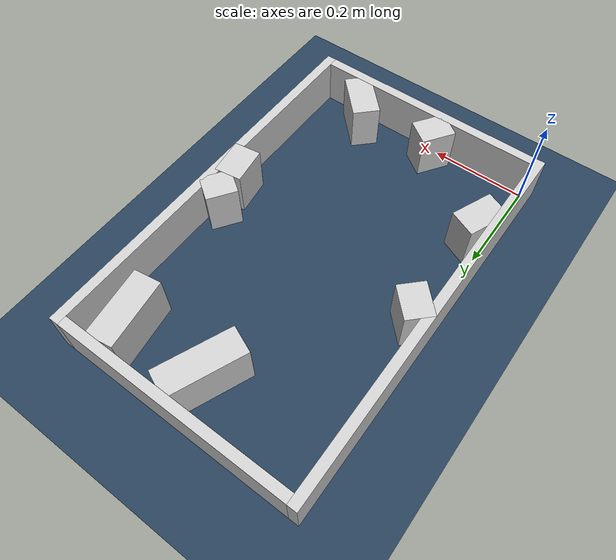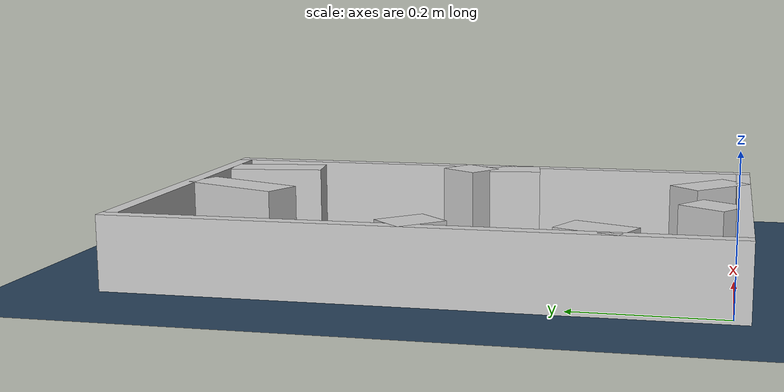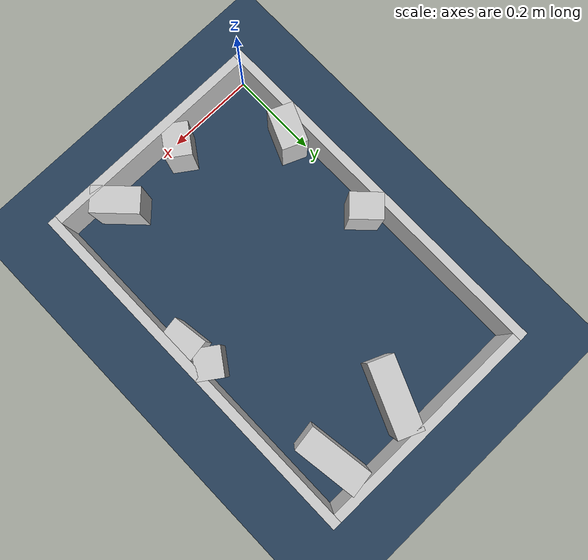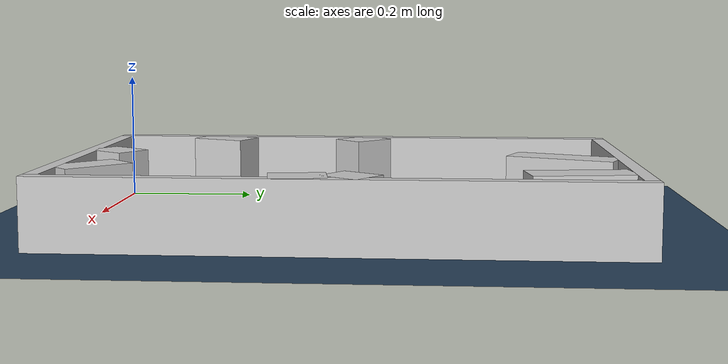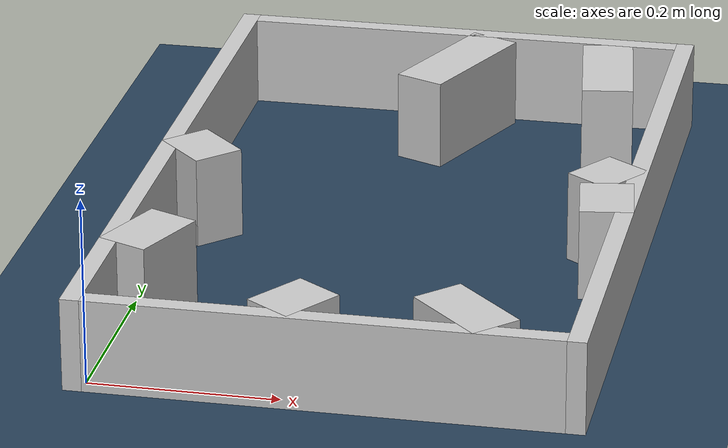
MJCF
<?xml version="1.0" ?>
<mujoco model="generated_real_template">
  <compiler angle="degree"/>
  <option timestep="0.002" integrator="implicitfast" iterations="100" cone="elliptic"/>
  <default>
    <geom density="1"/>
  </default>
  <asset>
    <texture builtin="gradient" height="3072" rgb1="0.3 0.5 0.7" rgb2="0 0 0" type="skybox" width="512"/>
    <texture builtin="checker" height="300" mark="edge" markrgb="0.8 0.8 0.8" name="groundplane" rgb1="0.2 0.3 0.4" rgb2="0.1 0.2 0.3" type="2d" width="300"/>
    <material name="groundplane" reflectance="0.2" texrepeat="5 5" texture="groundplane" texuniform="true"/>
  </asset>
  <worldbody>
    <light dir="0 0 -1" directional="true" pos="0 0 1.5"/>
    <geom name="floor" type="plane" condim="4" friction="0.5 0.005 0.001" material="groundplane" size="0 0 0.05"/>
    <body name="walls">
      <geom name="wall_boundary_left" type="box" condim="4" friction="1.0 0.005 0.0001" rgba="0.8 0.8 0.8 1" pos="-0.010000 0.387500 0.050000" euler="0 0 0.000000" size="0.010000 0.407500 0.050000"/>
      <geom name="wall_boundary_right" type="box" condim="4" friction="1.0 0.005 0.0001" rgba="0.8 0.8 0.8 1" pos="0.500000 0.387500 0.050000" euler="0 0 0.000000" size="0.010000 0.407500 0.050000"/>
      <geom name="wall_boundary_bottom" type="box" condim="4" friction="1.0 0.005 0.0001" rgba="0.8 0.8 0.8 1" pos="0.245000 -0.010000 0.050000" euler="0 0 0.000000" size="0.245000 0.010000 0.050000"/>
      <geom name="wall_boundary_top" type="box" condim="4" friction="1.0 0.005 0.0001" rgba="0.8 0.8 0.8 1" pos="0.245000 0.785000 0.050000" euler="0 0 0.000000" size="0.245000 0.010000 0.050000"/>
      <geom name="wall_inner_1_1" type="box" condim="4" friction="1.0 0.005 0.0001" rgba="0.8 0.8 0.8 1" pos="0.468138 0.405028 0.050000" euler="0 0 -124.817375" size="0.032336 0.028500 0.050000"/>
      <geom name="wall_inner_1_2" type="box" condim="4" friction="1.0 0.005 0.0001" rgba="0.8 0.8 0.8 1" pos="0.207178 0.029798 0.050000" euler="0 0 -124.817375" size="0.036296 0.028500 0.050000"/>
      <geom name="wall_inner_2_1" type="box" condim="4" friction="1.0 0.005 0.0001" rgba="0.8 0.8 0.8 1" pos="0.025231 0.396008 0.050000" euler="0 0 -45.296326" size="0.035501 0.028500 0.050000"/>
      <geom name="wall_inner_2_2" type="box" condim="4" friction="1.0 0.005 0.0001" rgba="0.8 0.8 0.8 1" pos="0.380767 0.036775 0.050000" euler="0 0 -45.296326" size="0.051671 0.028500 0.050000"/>
      <geom name="wall_inner_3_1" type="box" condim="4" friction="1.0 0.005 0.0001" rgba="0.8 0.8 0.8 1" pos="0.476291 0.337181 0.050000" euler="0 0 98.223467" size="0.038462 0.028500 0.050000"/>
      <geom name="wall_inner_3_2" type="box" condim="4" friction="1.0 0.005 0.0001" rgba="0.8 0.8 0.8 1" pos="0.423115 0.705126 0.050000" euler="0 0 98.223467" size="0.070600 0.028500 0.050000"/>
      <geom name="wall_inner_4_1" type="box" condim="4" friction="1.0 0.005 0.0001" rgba="0.8 0.8 0.8 1" pos="0.023690 0.165619 0.050000" euler="0 0 67.051600" size="0.044741 0.028500 0.050000"/>
      <geom name="wall_inner_4_2" type="box" condim="4" friction="1.0 0.005 0.0001" rgba="0.8 0.8 0.8 1" pos="0.250950 0.702355 0.050000" euler="0 0 67.051600" size="0.078889 0.028500 0.050000"/>
    </body>
  </worldbody>
</mujoco>
